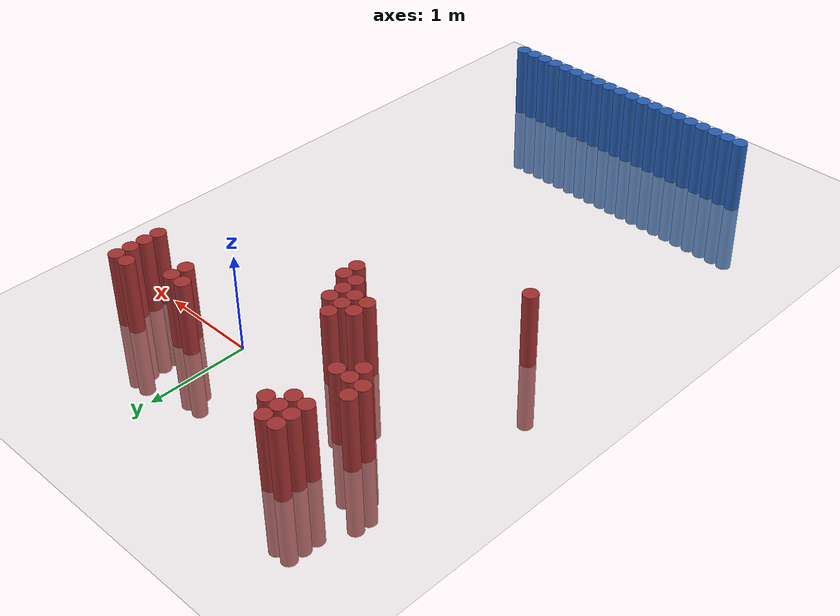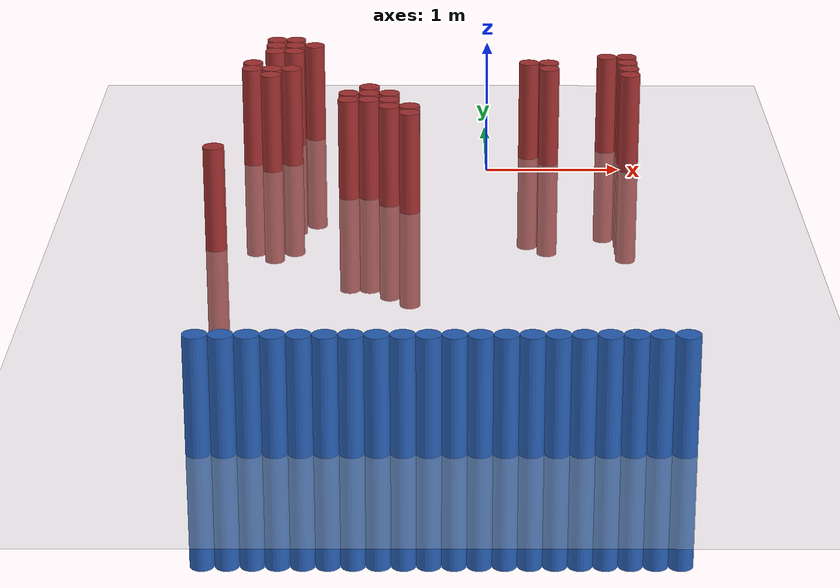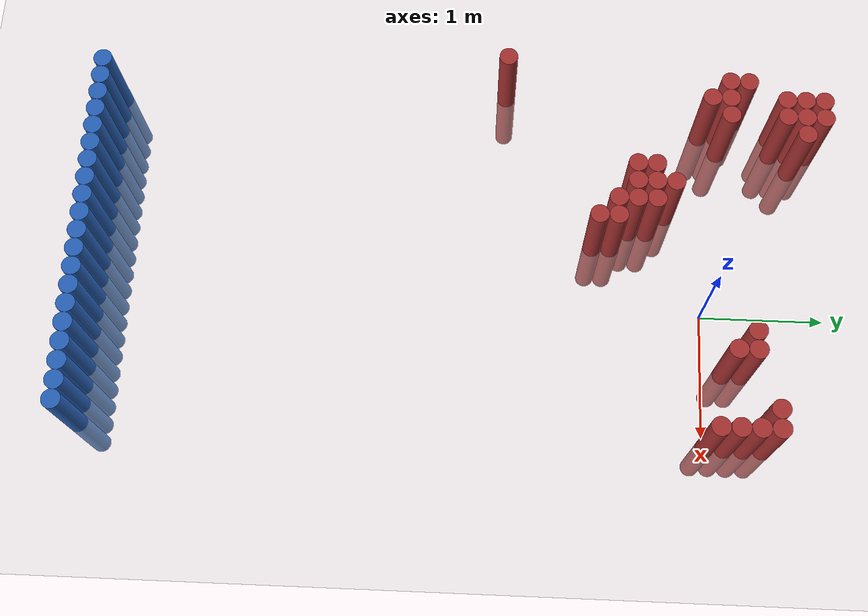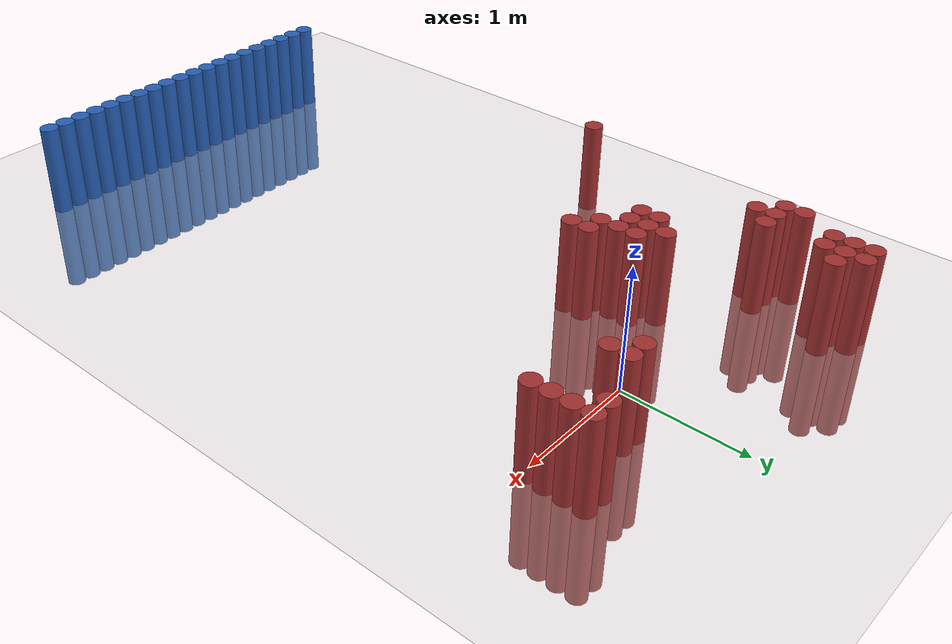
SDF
<sdf version="1.6">
 <world name="default">
  <model name="ground_plane">
   <static>1</static>
   <link name="link">
    <collision name="collision">
     <geometry><plane><normal>0 0 1</normal><size>100 100</size></plane></geometry>
     <surface><friction><ode><mu>100</mu><mu2>50</mu2></ode></friction></surface>
    </collision>
    <visual name="visual">
     <cast_shadows>0</cast_shadows>
     <geometry><plane><normal>0 0 1</normal><size>100 100</size></plane></geometry>
     <material>
      <script><uri>file://media/materials/scripts/gazebo.material</uri><name>Gazebo/Grey</name></script>
     </material>
    </visual>
   </link>
  </model>
  <model name="unit_cylinder_19">
   <static>1</static>
   <pose>1.075000 -4.925000 0.000000 0.000000 0.000000 0.000000</pose>
   <link name="link">
    <inertial>
     <mass>1</mass>
     <inertia><ixx>0.145833</ixx><ixy>0</ixy><ixz>0</ixz><iyy>0.145833</iyy><iyz>0</iyz><izz>0.125</izz></inertia>
    </inertial>
    <collision name="collision">
     <geometry><cylinder><radius>0.075000</radius><length>1.5</length></cylinder></geometry>
    </collision>
    <visual name="visual">
     <geometry><cylinder><radius>0.075000</radius><length>1.5</length></cylinder></geometry>
     <material>
      <ambient>0.152000 0.379000 0.720000 1</ambient>
      <diffuse>0.152000 0.379000 0.720000 1</diffuse>
     </material>
     <material>
      <script><name>Gazebo/Grey</name><uri>file://media/materials/scripts/gazebo.material</uri></script>
     </material>
    </visual>
   </link>
  </model>
  <model name="unit_cylinder_20">
   <static>1</static>
   <pose>0.925000 -4.925000 0.000000 0.000000 0.000000 0.000000</pose>
   <link name="link">
    <inertial>
     <mass>1</mass>
     <inertia><ixx>0.145833</ixx><ixy>0</ixy><ixz>0</ixz><iyy>0.145833</iyy><iyz>0</iyz><izz>0.125</izz></inertia>
    </inertial>
    <collision name="collision">
     <geometry><cylinder><radius>0.075000</radius><length>1.5</length></cylinder></geometry>
    </collision>
    <visual name="visual">
     <geometry><cylinder><radius>0.075000</radius><length>1.5</length></cylinder></geometry>
     <material>
      <ambient>0.152000 0.379000 0.720000 1</ambient>
      <diffuse>0.152000 0.379000 0.720000 1</diffuse>
     </material>
     <material>
      <script><name>Gazebo/Grey</name><uri>file://media/materials/scripts/gazebo.material</uri></script>
     </material>
    </visual>
   </link>
  </model>
  <model name="unit_cylinder_21">
   <static>1</static>
   <pose>0.775000 -4.925000 0.000000 0.000000 0.000000 0.000000</pose>
   <link name="link">
    <inertial>
     <mass>1</mass>
     <inertia><ixx>0.145833</ixx><ixy>0</ixy><ixz>0</ixz><iyy>0.145833</iyy><iyz>0</iyz><izz>0.125</izz></inertia>
    </inertial>
    <collision name="collision">
     <geometry><cylinder><radius>0.075000</radius><length>1.5</length></cylinder></geometry>
    </collision>
    <visual name="visual">
     <geometry><cylinder><radius>0.075000</radius><length>1.5</length></cylinder></geometry>
     <material>
      <ambient>0.152000 0.379000 0.720000 1</ambient>
      <diffuse>0.152000 0.379000 0.720000 1</diffuse>
     </material>
     <material>
      <script><name>Gazebo/Grey</name><uri>file://media/materials/scripts/gazebo.material</uri></script>
     </material>
    </visual>
   </link>
  </model>
  <model name="unit_cylinder_22">
   <static>1</static>
   <pose>0.625000 -4.925000 0.000000 0.000000 0.000000 0.000000</pose>
   <link name="link">
    <inertial>
     <mass>1</mass>
     <inertia><ixx>0.145833</ixx><ixy>0</ixy><ixz>0</ixz><iyy>0.145833</iyy><iyz>0</iyz><izz>0.125</izz></inertia>
    </inertial>
    <collision name="collision">
     <geometry><cylinder><radius>0.075000</radius><length>1.5</length></cylinder></geometry>
    </collision>
    <visual name="visual">
     <geometry><cylinder><radius>0.075000</radius><length>1.5</length></cylinder></geometry>
     <material>
      <ambient>0.152000 0.379000 0.720000 1</ambient>
      <diffuse>0.152000 0.379000 0.720000 1</diffuse>
     </material>
     <material>
      <script><name>Gazebo/Grey</name><uri>file://media/materials/scripts/gazebo.material</uri></script>
     </material>
    </visual>
   </link>
  </model>
  <model name="unit_cylinder_23">
   <static>1</static>
   <pose>0.475000 -4.925000 0.000000 0.000000 0.000000 0.000000</pose>
   <link name="link">
    <inertial>
     <mass>1</mass>
     <inertia><ixx>0.145833</ixx><ixy>0</ixy><ixz>0</ixz><iyy>0.145833</iyy><iyz>0</iyz><izz>0.125</izz></inertia>
    </inertial>
    <collision name="collision">
     <geometry><cylinder><radius>0.075000</radius><length>1.5</length></cylinder></geometry>
    </collision>
    <visual name="visual">
     <geometry><cylinder><radius>0.075000</radius><length>1.5</length></cylinder></geometry>
     <material>
      <ambient>0.152000 0.379000 0.720000 1</ambient>
      <diffuse>0.152000 0.379000 0.720000 1</diffuse>
     </material>
     <material>
      <script><name>Gazebo/Grey</name><uri>file://media/materials/scripts/gazebo.material</uri></script>
     </material>
    </visual>
   </link>
  </model>
  <model name="unit_cylinder_24">
   <static>1</static>
   <pose>0.325000 -4.925000 0.000000 0.000000 0.000000 0.000000</pose>
   <link name="link">
    <inertial>
     <mass>1</mass>
     <inertia><ixx>0.145833</ixx><ixy>0</ixy><ixz>0</ixz><iyy>0.145833</iyy><iyz>0</iyz><izz>0.125</izz></inertia>
    </inertial>
    <collision name="collision">
     <geometry><cylinder><radius>0.075000</radius><length>1.5</length></cylinder></geometry>
    </collision>
    <visual name="visual">
     <geometry><cylinder><radius>0.075000</radius><length>1.5</length></cylinder></geometry>
     <material>
      <ambient>0.152000 0.379000 0.720000 1</ambient>
      <diffuse>0.152000 0.379000 0.720000 1</diffuse>
     </material>
     <material>
      <script><name>Gazebo/Grey</name><uri>file://media/materials/scripts/gazebo.material</uri></script>
     </material>
    </visual>
   </link>
  </model>
  <model name="unit_cylinder_25">
   <static>1</static>
   <pose>0.175000 -4.925000 0.000000 0.000000 0.000000 0.000000</pose>
   <link name="link">
    <inertial>
     <mass>1</mass>
     <inertia><ixx>0.145833</ixx><ixy>0</ixy><ixz>0</ixz><iyy>0.145833</iyy><iyz>0</iyz><izz>0.125</izz></inertia>
    </inertial>
    <collision name="collision">
     <geometry><cylinder><radius>0.075000</radius><length>1.5</length></cylinder></geometry>
    </collision>
    <visual name="visual">
     <geometry><cylinder><radius>0.075000</radius><length>1.5</length></cylinder></geometry>
     <material>
      <ambient>0.152000 0.379000 0.720000 1</ambient>
      <diffuse>0.152000 0.379000 0.720000 1</diffuse>
     </material>
     <material>
      <script><name>Gazebo/Grey</name><uri>file://media/materials/scripts/gazebo.material</uri></script>
     </material>
    </visual>
   </link>
  </model>
  <model name="unit_cylinder_26">
   <static>1</static>
   <pose>0.025000 -4.925000 0.000000 0.000000 0.000000 0.000000</pose>
   <link name="link">
    <inertial>
     <mass>1</mass>
     <inertia><ixx>0.145833</ixx><ixy>0</ixy><ixz>0</ixz><iyy>0.145833</iyy><iyz>0</iyz><izz>0.125</izz></inertia>
    </inertial>
    <collision name="collision">
     <geometry><cylinder><radius>0.075000</radius><length>1.5</length></cylinder></geometry>
    </collision>
    <visual name="visual">
     <geometry><cylinder><radius>0.075000</radius><length>1.5</length></cylinder></geometry>
     <material>
      <ambient>0.152000 0.379000 0.720000 1</ambient>
      <diffuse>0.152000 0.379000 0.720000 1</diffuse>
     </material>
     <material>
      <script><name>Gazebo/Grey</name><uri>file://media/materials/scripts/gazebo.material</uri></script>
     </material>
    </visual>
   </link>
  </model>
  <model name="unit_cylinder_27">
   <static>1</static>
   <pose>-0.125000 -4.925000 0.000000 0.000000 0.000000 0.000000</pose>
   <link name="link">
    <inertial>
     <mass>1</mass>
     <inertia><ixx>0.145833</ixx><ixy>0</ixy><ixz>0</ixz><iyy>0.145833</iyy><iyz>0</iyz><izz>0.125</izz></inertia>
    </inertial>
    <collision name="collision">
     <geometry><cylinder><radius>0.075000</radius><length>1.5</length></cylinder></geometry>
    </collision>
    <visual name="visual">
     <geometry><cylinder><radius>0.075000</radius><length>1.5</length></cylinder></geometry>
     <material>
      <ambient>0.152000 0.379000 0.720000 1</ambient>
      <diffuse>0.152000 0.379000 0.720000 1</diffuse>
     </material>
     <material>
      <script><name>Gazebo/Grey</name><uri>file://media/materials/scripts/gazebo.material</uri></script>
     </material>
    </visual>
   </link>
  </model>
  <model name="unit_cylinder_28">
   <static>1</static>
   <pose>-0.275000 -4.925000 0.000000 0.000000 0.000000 0.000000</pose>
   <link name="link">
    <inertial>
     <mass>1</mass>
     <inertia><ixx>0.145833</ixx><ixy>0</ixy><ixz>0</ixz><iyy>0.145833</iyy><iyz>0</iyz><izz>0.125</izz></inertia>
    </inertial>
    <collision name="collision">
     <geometry><cylinder><radius>0.075000</radius><length>1.5</length></cylinder></geometry>
    </collision>
    <visual name="visual">
     <geometry><cylinder><radius>0.075000</radius><length>1.5</length></cylinder></geometry>
     <material>
      <ambient>0.152000 0.379000 0.720000 1</ambient>
      <diffuse>0.152000 0.379000 0.720000 1</diffuse>
     </material>
     <material>
      <script><name>Gazebo/Grey</name><uri>file://media/materials/scripts/gazebo.material</uri></script>
     </material>
    </visual>
   </link>
  </model>
  <model name="unit_cylinder_29">
   <static>1</static>
   <pose>-0.425000 -4.925000 0.000000 0.000000 0.000000 0.000000</pose>
   <link name="link">
    <inertial>
     <mass>1</mass>
     <inertia><ixx>0.145833</ixx><ixy>0</ixy><ixz>0</ixz><iyy>0.145833</iyy><iyz>0</iyz><izz>0.125</izz></inertia>
    </inertial>
    <collision name="collision">
     <geometry><cylinder><radius>0.075000</radius><length>1.5</length></cylinder></geometry>
    </collision>
    <visual name="visual">
     <geometry><cylinder><radius>0.075000</radius><length>1.5</length></cylinder></geometry>
     <material>
      <ambient>0.152000 0.379000 0.720000 1</ambient>
      <diffuse>0.152000 0.379000 0.720000 1</diffuse>
     </material>
     <material>
      <script><name>Gazebo/Grey</name><uri>file://media/materials/scripts/gazebo.material</uri></script>
     </material>
    </visual>
   </link>
  </model>
  <model name="unit_cylinder_30">
   <static>1</static>
   <pose>-0.575000 -4.925000 0.000000 0.000000 0.000000 0.000000</pose>
   <link name="link">
    <inertial>
     <mass>1</mass>
     <inertia><ixx>0.145833</ixx><ixy>0</ixy><ixz>0</ixz><iyy>0.145833</iyy><iyz>0</iyz><izz>0.125</izz></inertia>
    </inertial>
    <collision name="collision">
     <geometry><cylinder><radius>0.075000</radius><length>1.5</length></cylinder></geometry>
    </collision>
    <visual name="visual">
     <geometry><cylinder><radius>0.075000</radius><length>1.5</length></cylinder></geometry>
     <material>
      <ambient>0.152000 0.379000 0.720000 1</ambient>
      <diffuse>0.152000 0.379000 0.720000 1</diffuse>
     </material>
     <material>
      <script><name>Gazebo/Grey</name><uri>file://media/materials/scripts/gazebo.material</uri></script>
     </material>
    </visual>
   </link>
  </model>
  <model name="unit_cylinder_31">
   <static>1</static>
   <pose>-0.725000 -4.925000 0.000000 0.000000 0.000000 0.000000</pose>
   <link name="link">
    <inertial>
     <mass>1</mass>
     <inertia><ixx>0.145833</ixx><ixy>0</ixy><ixz>0</ixz><iyy>0.145833</iyy><iyz>0</iyz><izz>0.125</izz></inertia>
    </inertial>
    <collision name="collision">
     <geometry><cylinder><radius>0.075000</radius><length>1.5</length></cylinder></geometry>
    </collision>
    <visual name="visual">
     <geometry><cylinder><radius>0.075000</radius><length>1.5</length></cylinder></geometry>
     <material>
      <ambient>0.152000 0.379000 0.720000 1</ambient>
      <diffuse>0.152000 0.379000 0.720000 1</diffuse>
     </material>
     <material>
      <script><name>Gazebo/Grey</name><uri>file://media/materials/scripts/gazebo.material</uri></script>
     </material>
    </visual>
   </link>
  </model>
  <model name="unit_cylinder_32">
   <static>1</static>
   <pose>-0.875000 -4.925000 0.000000 0.000000 0.000000 0.000000</pose>
   <link name="link">
    <inertial>
     <mass>1</mass>
     <inertia><ixx>0.145833</ixx><ixy>0</ixy><ixz>0</ixz><iyy>0.145833</iyy><iyz>0</iyz><izz>0.125</izz></inertia>
    </inertial>
    <collision name="collision">
     <geometry><cylinder><radius>0.075000</radius><length>1.5</length></cylinder></geometry>
    </collision>
    <visual name="visual">
     <geometry><cylinder><radius>0.075000</radius><length>1.5</length></cylinder></geometry>
     <material>
      <ambient>0.152000 0.379000 0.720000 1</ambient>
      <diffuse>0.152000 0.379000 0.720000 1</diffuse>
     </material>
     <material>
      <script><name>Gazebo/Grey</name><uri>file://media/materials/scripts/gazebo.material</uri></script>
     </material>
    </visual>
   </link>
  </model>
  <model name="unit_cylinder_33">
   <static>1</static>
   <pose>-1.025000 -4.925000 0.000000 0.000000 0.000000 0.000000</pose>
   <link name="link">
    <inertial>
     <mass>1</mass>
     <inertia><ixx>0.145833</ixx><ixy>0</ixy><ixz>0</ixz><iyy>0.145833</iyy><iyz>0</iyz><izz>0.125</izz></inertia>
    </inertial>
    <collision name="collision">
     <geometry><cylinder><radius>0.075000</radius><length>1.5</length></cylinder></geometry>
    </collision>
    <visual name="visual">
     <geometry><cylinder><radius>0.075000</radius><length>1.5</length></cylinder></geometry>
     <material>
      <ambient>0.152000 0.379000 0.720000 1</ambient>
      <diffuse>0.152000 0.379000 0.720000 1</diffuse>
     </material>
     <material>
      <script><name>Gazebo/Grey</name><uri>file://media/materials/scripts/gazebo.material</uri></script>
     </material>
    </visual>
   </link>
  </model>
  <model name="unit_cylinder_34">
   <static>1</static>
   <pose>-1.175000 -4.925000 0.000000 0.000000 0.000000 0.000000</pose>
   <link name="link">
    <inertial>
     <mass>1</mass>
     <inertia><ixx>0.145833</ixx><ixy>0</ixy><ixz>0</ixz><iyy>0.145833</iyy><iyz>0</iyz><izz>0.125</izz></inertia>
    </inertial>
    <collision name="collision">
     <geometry><cylinder><radius>0.075000</radius><length>1.5</length></cylinder></geometry>
    </collision>
    <visual name="visual">
     <geometry><cylinder><radius>0.075000</radius><length>1.5</length></cylinder></geometry>
     <material>
      <ambient>0.152000 0.379000 0.720000 1</ambient>
      <diffuse>0.152000 0.379000 0.720000 1</diffuse>
     </material>
     <material>
      <script><name>Gazebo/Grey</name><uri>file://media/materials/scripts/gazebo.material</uri></script>
     </material>
    </visual>
   </link>
  </model>
  <model name="unit_cylinder_35">
   <static>1</static>
   <pose>-1.325000 -4.925000 0.000000 0.000000 0.000000 0.000000</pose>
   <link name="link">
    <inertial>
     <mass>1</mass>
     <inertia><ixx>0.145833</ixx><ixy>0</ixy><ixz>0</ixz><iyy>0.145833</iyy><iyz>0</iyz><izz>0.125</izz></inertia>
    </inertial>
    <collision name="collision">
     <geometry><cylinder><radius>0.075000</radius><length>1.5</length></cylinder></geometry>
    </collision>
    <visual name="visual">
     <geometry><cylinder><radius>0.075000</radius><length>1.5</length></cylinder></geometry>
     <material>
      <ambient>0.152000 0.379000 0.720000 1</ambient>
      <diffuse>0.152000 0.379000 0.720000 1</diffuse>
     </material>
     <material>
      <script><name>Gazebo/Grey</name><uri>file://media/materials/scripts/gazebo.material</uri></script>
     </material>
    </visual>
   </link>
  </model>
  <model name="unit_cylinder_36">
   <static>1</static>
   <pose>-1.475000 -4.925000 0.000000 0.000000 0.000000 0.000000</pose>
   <link name="link">
    <inertial>
     <mass>1</mass>
     <inertia><ixx>0.145833</ixx><ixy>0</ixy><ixz>0</ixz><iyy>0.145833</iyy><iyz>0</iyz><izz>0.125</izz></inertia>
    </inertial>
    <collision name="collision">
     <geometry><cylinder><radius>0.075000</radius><length>1.5</length></cylinder></geometry>
    </collision>
    <visual name="visual">
     <geometry><cylinder><radius>0.075000</radius><length>1.5</length></cylinder></geometry>
     <material>
      <ambient>0.152000 0.379000 0.720000 1</ambient>
      <diffuse>0.152000 0.379000 0.720000 1</diffuse>
     </material>
     <material>
      <script><name>Gazebo/Grey</name><uri>file://media/materials/scripts/gazebo.material</uri></script>
     </material>
    </visual>
   </link>
  </model>
  <model name="unit_cylinder_37">
   <static>1</static>
   <pose>-1.625000 -4.925000 0.000000 0.000000 0.000000 0.000000</pose>
   <link name="link">
    <inertial>
     <mass>1</mass>
     <inertia><ixx>0.145833</ixx><ixy>0</ixy><ixz>0</ixz><iyy>0.145833</iyy><iyz>0</iyz><izz>0.125</izz></inertia>
    </inertial>
    <collision name="collision">
     <geometry><cylinder><radius>0.075000</radius><length>1.5</length></cylinder></geometry>
    </collision>
    <visual name="visual">
     <geometry><cylinder><radius>0.075000</radius><length>1.5</length></cylinder></geometry>
     <material>
      <ambient>0.152000 0.379000 0.720000 1</ambient>
      <diffuse>0.152000 0.379000 0.720000 1</diffuse>
     </material>
     <material>
      <script><name>Gazebo/Grey</name><uri>file://media/materials/scripts/gazebo.material</uri></script>
     </material>
    </visual>
   </link>
  </model>
  <model name="unit_cylinder_38">
   <static>1</static>
   <pose>-1.775000 -4.925000 0.000000 0.000000 0.000000 0.000000</pose>
   <link name="link">
    <inertial>
     <mass>1</mass>
     <inertia><ixx>0.145833</ixx><ixy>0</ixy><ixz>0</ixz><iyy>0.145833</iyy><iyz>0</iyz><izz>0.125</izz></inertia>
    </inertial>
    <collision name="collision">
     <geometry><cylinder><radius>0.075000</radius><length>1.5</length></cylinder></geometry>
    </collision>
    <visual name="visual">
     <geometry><cylinder><radius>0.075000</radius><length>1.5</length></cylinder></geometry>
     <material>
      <ambient>0.152000 0.379000 0.720000 1</ambient>
      <diffuse>0.152000 0.379000 0.720000 1</diffuse>
     </material>
     <material>
      <script><name>Gazebo/Grey</name><uri>file://media/materials/scripts/gazebo.material</uri></script>
     </material>
    </visual>
   </link>
  </model>
  <model name="unit_cylinder_306">
   <static>1</static>
   <pose>-1.925000 -1.625000 0.000000 0.000000 0.000000 0.000000</pose>
   <link name="link">
    <inertial>
     <mass>1</mass>
     <inertia><ixx>0.145833</ixx><ixy>0</ixy><ixz>0</ixz><iyy>0.145833</iyy><iyz>0</iyz><izz>0.125</izz></inertia>
    </inertial>
    <collision name="collision">
     <geometry><cylinder><radius>0.075000</radius><length>1.5</length></cylinder></geometry>
    </collision>
    <visual name="visual">
     <geometry><cylinder><radius>0.075000</radius><length>1.5</length></cylinder></geometry>
     <material>
      <ambient>0.648000 0.192000 0.192000 1</ambient>
      <diffuse>0.648000 0.192000 0.192000 1</diffuse>
     </material>
     <material>
      <script><name>Gazebo/Grey</name><uri>file://media/materials/scripts/gazebo.material</uri></script>
     </material>
    </visual>
   </link>
  </model>
  <model name="unit_cylinder_311">
   <static>1</static>
   <pose>-1.775000 0.175000 0.000000 0.000000 0.000000 0.000000</pose>
   <link name="link">
    <inertial>
     <mass>1</mass>
     <inertia><ixx>0.145833</ixx><ixy>0</ixy><ixz>0</ixz><iyy>0.145833</iyy><iyz>0</iyz><izz>0.125</izz></inertia>
    </inertial>
    <collision name="collision">
     <geometry><cylinder><radius>0.075000</radius><length>1.5</length></cylinder></geometry>
    </collision>
    <visual name="visual">
     <geometry><cylinder><radius>0.075000</radius><length>1.5</length></cylinder></geometry>
     <material>
      <ambient>0.648000 0.192000 0.192000 1</ambient>
      <diffuse>0.648000 0.192000 0.192000 1</diffuse>
     </material>
     <material>
      <script><name>Gazebo/Grey</name><uri>file://media/materials/scripts/gazebo.material</uri></script>
     </material>
    </visual>
   </link>
  </model>
  <model name="unit_cylinder_312">
   <static>1</static>
   <pose>-1.775000 0.325000 0.000000 0.000000 0.000000 0.000000</pose>
   <link name="link">
    <inertial>
     <mass>1</mass>
     <inertia><ixx>0.145833</ixx><ixy>0</ixy><ixz>0</ixz><iyy>0.145833</iyy><iyz>0</iyz><izz>0.125</izz></inertia>
    </inertial>
    <collision name="collision">
     <geometry><cylinder><radius>0.075000</radius><length>1.5</length></cylinder></geometry>
    </collision>
    <visual name="visual">
     <geometry><cylinder><radius>0.075000</radius><length>1.5</length></cylinder></geometry>
     <material>
      <ambient>0.648000 0.192000 0.192000 1</ambient>
      <diffuse>0.648000 0.192000 0.192000 1</diffuse>
     </material>
     <material>
      <script><name>Gazebo/Grey</name><uri>file://media/materials/scripts/gazebo.material</uri></script>
     </material>
    </visual>
   </link>
  </model>
  <model name="unit_cylinder_320">
   <static>1</static>
   <pose>-1.625000 0.025000 0.000000 0.000000 0.000000 0.000000</pose>
   <link name="link">
    <inertial>
     <mass>1</mass>
     <inertia><ixx>0.145833</ixx><ixy>0</ixy><ixz>0</ixz><iyy>0.145833</iyy><iyz>0</iyz><izz>0.125</izz></inertia>
    </inertial>
    <collision name="collision">
     <geometry><cylinder><radius>0.075000</radius><length>1.5</length></cylinder></geometry>
    </collision>
    <visual name="visual">
     <geometry><cylinder><radius>0.075000</radius><length>1.5</length></cylinder></geometry>
     <material>
      <ambient>0.648000 0.192000 0.192000 1</ambient>
      <diffuse>0.648000 0.192000 0.192000 1</diffuse>
     </material>
     <material>
      <script><name>Gazebo/Grey</name><uri>file://media/materials/scripts/gazebo.material</uri></script>
     </material>
    </visual>
   </link>
  </model>
  <model name="unit_cylinder_321">
   <static>1</static>
   <pose>-1.625000 0.175000 0.000000 0.000000 0.000000 0.000000</pose>
   <link name="link">
    <inertial>
     <mass>1</mass>
     <inertia><ixx>0.145833</ixx><ixy>0</ixy><ixz>0</ixz><iyy>0.145833</iyy><iyz>0</iyz><izz>0.125</izz></inertia>
    </inertial>
    <collision name="collision">
     <geometry><cylinder><radius>0.075000</radius><length>1.5</length></cylinder></geometry>
    </collision>
    <visual name="visual">
     <geometry><cylinder><radius>0.075000</radius><length>1.5</length></cylinder></geometry>
     <material>
      <ambient>0.648000 0.192000 0.192000 1</ambient>
      <diffuse>0.648000 0.192000 0.192000 1</diffuse>
     </material>
     <material>
      <script><name>Gazebo/Grey</name><uri>file://media/materials/scripts/gazebo.material</uri></script>
     </material>
    </visual>
   </link>
  </model>
  <model name="unit_cylinder_322">
   <static>1</static>
   <pose>-1.625000 0.625000 0.000000 0.000000 0.000000 0.000000</pose>
   <link name="link">
    <inertial>
     <mass>1</mass>
     <inertia><ixx>0.145833</ixx><ixy>0</ixy><ixz>0</ixz><iyy>0.145833</iyy><iyz>0</iyz><izz>0.125</izz></inertia>
    </inertial>
    <collision name="collision">
     <geometry><cylinder><radius>0.075000</radius><length>1.5</length></cylinder></geometry>
    </collision>
    <visual name="visual">
     <geometry><cylinder><radius>0.075000</radius><length>1.5</length></cylinder></geometry>
     <material>
      <ambient>0.648000 0.192000 0.192000 1</ambient>
      <diffuse>0.648000 0.192000 0.192000 1</diffuse>
     </material>
     <material>
      <script><name>Gazebo/Grey</name><uri>file://media/materials/scripts/gazebo.material</uri></script>
     </material>
    </visual>
   </link>
  </model>
  <model name="unit_cylinder_323">
   <static>1</static>
   <pose>-1.625000 0.775000 0.000000 0.000000 0.000000 0.000000</pose>
   <link name="link">
    <inertial>
     <mass>1</mass>
     <inertia><ixx>0.145833</ixx><ixy>0</ixy><ixz>0</ixz><iyy>0.145833</iyy><iyz>0</iyz><izz>0.125</izz></inertia>
    </inertial>
    <collision name="collision">
     <geometry><cylinder><radius>0.075000</radius><length>1.5</length></cylinder></geometry>
    </collision>
    <visual name="visual">
     <geometry><cylinder><radius>0.075000</radius><length>1.5</length></cylinder></geometry>
     <material>
      <ambient>0.648000 0.192000 0.192000 1</ambient>
      <diffuse>0.648000 0.192000 0.192000 1</diffuse>
     </material>
     <material>
      <script><name>Gazebo/Grey</name><uri>file://media/materials/scripts/gazebo.material</uri></script>
     </material>
    </visual>
   </link>
  </model>
  <model name="unit_cylinder_324">
   <static>1</static>
   <pose>-1.625000 0.925000 0.000000 0.000000 0.000000 0.000000</pose>
   <link name="link">
    <inertial>
     <mass>1</mass>
     <inertia><ixx>0.145833</ixx><ixy>0</ixy><ixz>0</ixz><iyy>0.145833</iyy><iyz>0</iyz><izz>0.125</izz></inertia>
    </inertial>
    <collision name="collision">
     <geometry><cylinder><radius>0.075000</radius><length>1.5</length></cylinder></geometry>
    </collision>
    <visual name="visual">
     <geometry><cylinder><radius>0.075000</radius><length>1.5</length></cylinder></geometry>
     <material>
      <ambient>0.648000 0.192000 0.192000 1</ambient>
      <diffuse>0.648000 0.192000 0.192000 1</diffuse>
     </material>
     <material>
      <script><name>Gazebo/Grey</name><uri>file://media/materials/scripts/gazebo.material</uri></script>
     </material>
    </visual>
   </link>
  </model>
  <model name="unit_cylinder_337">
   <static>1</static>
   <pose>-1.475000 0.175000 0.000000 0.000000 0.000000 0.000000</pose>
   <link name="link">
    <inertial>
     <mass>1</mass>
     <inertia><ixx>0.145833</ixx><ixy>0</ixy><ixz>0</ixz><iyy>0.145833</iyy><iyz>0</iyz><izz>0.125</izz></inertia>
    </inertial>
    <collision name="collision">
     <geometry><cylinder><radius>0.075000</radius><length>1.5</length></cylinder></geometry>
    </collision>
    <visual name="visual">
     <geometry><cylinder><radius>0.075000</radius><length>1.5</length></cylinder></geometry>
     <material>
      <ambient>0.648000 0.192000 0.192000 1</ambient>
      <diffuse>0.648000 0.192000 0.192000 1</diffuse>
     </material>
     <material>
      <script><name>Gazebo/Grey</name><uri>file://media/materials/scripts/gazebo.material</uri></script>
     </material>
    </visual>
   </link>
  </model>
  <model name="unit_cylinder_338">
   <static>1</static>
   <pose>-1.475000 0.625000 0.000000 0.000000 0.000000 0.000000</pose>
   <link name="link">
    <inertial>
     <mass>1</mass>
     <inertia><ixx>0.145833</ixx><ixy>0</ixy><ixz>0</ixz><iyy>0.145833</iyy><iyz>0</iyz><izz>0.125</izz></inertia>
    </inertial>
    <collision name="collision">
     <geometry><cylinder><radius>0.075000</radius><length>1.5</length></cylinder></geometry>
    </collision>
    <visual name="visual">
     <geometry><cylinder><radius>0.075000</radius><length>1.5</length></cylinder></geometry>
     <material>
      <ambient>0.648000 0.192000 0.192000 1</ambient>
      <diffuse>0.648000 0.192000 0.192000 1</diffuse>
     </material>
     <material>
      <script><name>Gazebo/Grey</name><uri>file://media/materials/scripts/gazebo.material</uri></script>
     </material>
    </visual>
   </link>
  </model>
  <model name="unit_cylinder_339">
   <static>1</static>
   <pose>-1.475000 0.775000 0.000000 0.000000 0.000000 0.000000</pose>
   <link name="link">
    <inertial>
     <mass>1</mass>
     <inertia><ixx>0.145833</ixx><ixy>0</ixy><ixz>0</ixz><iyy>0.145833</iyy><iyz>0</iyz><izz>0.125</izz></inertia>
    </inertial>
    <collision name="collision">
     <geometry><cylinder><radius>0.075000</radius><length>1.5</length></cylinder></geometry>
    </collision>
    <visual name="visual">
     <geometry><cylinder><radius>0.075000</radius><length>1.5</length></cylinder></geometry>
     <material>
      <ambient>0.648000 0.192000 0.192000 1</ambient>
      <diffuse>0.648000 0.192000 0.192000 1</diffuse>
     </material>
     <material>
      <script><name>Gazebo/Grey</name><uri>file://media/materials/scripts/gazebo.material</uri></script>
     </material>
    </visual>
   </link>
  </model>
  <model name="unit_cylinder_340">
   <static>1</static>
   <pose>-1.475000 0.925000 0.000000 0.000000 0.000000 0.000000</pose>
   <link name="link">
    <inertial>
     <mass>1</mass>
     <inertia><ixx>0.145833</ixx><ixy>0</ixy><ixz>0</ixz><iyy>0.145833</iyy><iyz>0</iyz><izz>0.125</izz></inertia>
    </inertial>
    <collision name="collision">
     <geometry><cylinder><radius>0.075000</radius><length>1.5</length></cylinder></geometry>
    </collision>
    <visual name="visual">
     <geometry><cylinder><radius>0.075000</radius><length>1.5</length></cylinder></geometry>
     <material>
      <ambient>0.648000 0.192000 0.192000 1</ambient>
      <diffuse>0.648000 0.192000 0.192000 1</diffuse>
     </material>
     <material>
      <script><name>Gazebo/Grey</name><uri>file://media/materials/scripts/gazebo.material</uri></script>
     </material>
    </visual>
   </link>
  </model>
  <model name="unit_cylinder_348">
   <static>1</static>
   <pose>-1.325000 0.775000 0.000000 0.000000 0.000000 0.000000</pose>
   <link name="link">
    <inertial>
     <mass>1</mass>
     <inertia><ixx>0.145833</ixx><ixy>0</ixy><ixz>0</ixz><iyy>0.145833</iyy><iyz>0</iyz><izz>0.125</izz></inertia>
    </inertial>
    <collision name="collision">
     <geometry><cylinder><radius>0.075000</radius><length>1.5</length></cylinder></geometry>
    </collision>
    <visual name="visual">
     <geometry><cylinder><radius>0.075000</radius><length>1.5</length></cylinder></geometry>
     <material>
      <ambient>0.648000 0.192000 0.192000 1</ambient>
      <diffuse>0.648000 0.192000 0.192000 1</diffuse>
     </material>
     <material>
      <script><name>Gazebo/Grey</name><uri>file://media/materials/scripts/gazebo.material</uri></script>
     </material>
    </visual>
   </link>
  </model>
  <model name="unit_cylinder_357">
   <static>1</static>
   <pose>-1.025000 -0.575000 0.000000 0.000000 0.000000 0.000000</pose>
   <link name="link">
    <inertial>
     <mass>1</mass>
     <inertia><ixx>0.145833</ixx><ixy>0</ixy><ixz>0</ixz><iyy>0.145833</iyy><iyz>0</iyz><izz>0.125</izz></inertia>
    </inertial>
    <collision name="collision">
     <geometry><cylinder><radius>0.075000</radius><length>1.5</length></cylinder></geometry>
    </collision>
    <visual name="visual">
     <geometry><cylinder><radius>0.075000</radius><length>1.5</length></cylinder></geometry>
     <material>
      <ambient>0.648000 0.192000 0.192000 1</ambient>
      <diffuse>0.648000 0.192000 0.192000 1</diffuse>
     </material>
     <material>
      <script><name>Gazebo/Grey</name><uri>file://media/materials/scripts/gazebo.material</uri></script>
     </material>
    </visual>
   </link>
  </model>
  <model name="unit_cylinder_358">
   <static>1</static>
   <pose>-1.025000 -0.425000 0.000000 0.000000 0.000000 0.000000</pose>
   <link name="link">
    <inertial>
     <mass>1</mass>
     <inertia><ixx>0.145833</ixx><ixy>0</ixy><ixz>0</ixz><iyy>0.145833</iyy><iyz>0</iyz><izz>0.125</izz></inertia>
    </inertial>
    <collision name="collision">
     <geometry><cylinder><radius>0.075000</radius><length>1.5</length></cylinder></geometry>
    </collision>
    <visual name="visual">
     <geometry><cylinder><radius>0.075000</radius><length>1.5</length></cylinder></geometry>
     <material>
      <ambient>0.648000 0.192000 0.192000 1</ambient>
      <diffuse>0.648000 0.192000 0.192000 1</diffuse>
     </material>
     <material>
      <script><name>Gazebo/Grey</name><uri>file://media/materials/scripts/gazebo.material</uri></script>
     </material>
    </visual>
   </link>
  </model>
  <model name="unit_cylinder_359">
   <static>1</static>
   <pose>-0.875000 -0.575000 0.000000 0.000000 0.000000 0.000000</pose>
   <link name="link">
    <inertial>
     <mass>1</mass>
     <inertia><ixx>0.145833</ixx><ixy>0</ixy><ixz>0</ixz><iyy>0.145833</iyy><iyz>0</iyz><izz>0.125</izz></inertia>
    </inertial>
    <collision name="collision">
     <geometry><cylinder><radius>0.075000</radius><length>1.5</length></cylinder></geometry>
    </collision>
    <visual name="visual">
     <geometry><cylinder><radius>0.075000</radius><length>1.5</length></cylinder></geometry>
     <material>
      <ambient>0.648000 0.192000 0.192000 1</ambient>
      <diffuse>0.648000 0.192000 0.192000 1</diffuse>
     </material>
     <material>
      <script><name>Gazebo/Grey</name><uri>file://media/materials/scripts/gazebo.material</uri></script>
     </material>
    </visual>
   </link>
  </model>
  <model name="unit_cylinder_360">
   <static>1</static>
   <pose>-0.875000 -0.425000 0.000000 0.000000 0.000000 0.000000</pose>
   <link name="link">
    <inertial>
     <mass>1</mass>
     <inertia><ixx>0.145833</ixx><ixy>0</ixy><ixz>0</ixz><iyy>0.145833</iyy><iyz>0</iyz><izz>0.125</izz></inertia>
    </inertial>
    <collision name="collision">
     <geometry><cylinder><radius>0.075000</radius><length>1.5</length></cylinder></geometry>
    </collision>
    <visual name="visual">
     <geometry><cylinder><radius>0.075000</radius><length>1.5</length></cylinder></geometry>
     <material>
      <ambient>0.648000 0.192000 0.192000 1</ambient>
      <diffuse>0.648000 0.192000 0.192000 1</diffuse>
     </material>
     <material>
      <script><name>Gazebo/Grey</name><uri>file://media/materials/scripts/gazebo.material</uri></script>
     </material>
    </visual>
   </link>
  </model>
  <model name="unit_cylinder_361">
   <static>1</static>
   <pose>-0.875000 -0.275000 0.000000 0.000000 0.000000 0.000000</pose>
   <link name="link">
    <inertial>
     <mass>1</mass>
     <inertia><ixx>0.145833</ixx><ixy>0</ixy><ixz>0</ixz><iyy>0.145833</iyy><iyz>0</iyz><izz>0.125</izz></inertia>
    </inertial>
    <collision name="collision">
     <geometry><cylinder><radius>0.075000</radius><length>1.5</length></cylinder></geometry>
    </collision>
    <visual name="visual">
     <geometry><cylinder><radius>0.075000</radius><length>1.5</length></cylinder></geometry>
     <material>
      <ambient>0.648000 0.192000 0.192000 1</ambient>
      <diffuse>0.648000 0.192000 0.192000 1</diffuse>
     </material>
     <material>
      <script><name>Gazebo/Grey</name><uri>file://media/materials/scripts/gazebo.material</uri></script>
     </material>
    </visual>
   </link>
  </model>
  <model name="unit_cylinder_363">
   <static>1</static>
   <pose>-0.725000 -0.725000 0.000000 0.000000 0.000000 0.000000</pose>
   <link name="link">
    <inertial>
     <mass>1</mass>
     <inertia><ixx>0.145833</ixx><ixy>0</ixy><ixz>0</ixz><iyy>0.145833</iyy><iyz>0</iyz><izz>0.125</izz></inertia>
    </inertial>
    <collision name="collision">
     <geometry><cylinder><radius>0.075000</radius><length>1.5</length></cylinder></geometry>
    </collision>
    <visual name="visual">
     <geometry><cylinder><radius>0.075000</radius><length>1.5</length></cylinder></geometry>
     <material>
      <ambient>0.648000 0.192000 0.192000 1</ambient>
      <diffuse>0.648000 0.192000 0.192000 1</diffuse>
     </material>
     <material>
      <script><name>Gazebo/Grey</name><uri>file://media/materials/scripts/gazebo.material</uri></script>
     </material>
    </visual>
   </link>
  </model>
  <model name="unit_cylinder_364">
   <static>1</static>
   <pose>-0.725000 -0.575000 0.000000 0.000000 0.000000 0.000000</pose>
   <link name="link">
    <inertial>
     <mass>1</mass>
     <inertia><ixx>0.145833</ixx><ixy>0</ixy><ixz>0</ixz><iyy>0.145833</iyy><iyz>0</iyz><izz>0.125</izz></inertia>
    </inertial>
    <collision name="collision">
     <geometry><cylinder><radius>0.075000</radius><length>1.5</length></cylinder></geometry>
    </collision>
    <visual name="visual">
     <geometry><cylinder><radius>0.075000</radius><length>1.5</length></cylinder></geometry>
     <material>
      <ambient>0.648000 0.192000 0.192000 1</ambient>
      <diffuse>0.648000 0.192000 0.192000 1</diffuse>
     </material>
     <material>
      <script><name>Gazebo/Grey</name><uri>file://media/materials/scripts/gazebo.material</uri></script>
     </material>
    </visual>
   </link>
  </model>
  <model name="unit_cylinder_365">
   <static>1</static>
   <pose>-0.725000 -0.425000 0.000000 0.000000 0.000000 0.000000</pose>
   <link name="link">
    <inertial>
     <mass>1</mass>
     <inertia><ixx>0.145833</ixx><ixy>0</ixy><ixz>0</ixz><iyy>0.145833</iyy><iyz>0</iyz><izz>0.125</izz></inertia>
    </inertial>
    <collision name="collision">
     <geometry><cylinder><radius>0.075000</radius><length>1.5</length></cylinder></geometry>
    </collision>
    <visual name="visual">
     <geometry><cylinder><radius>0.075000</radius><length>1.5</length></cylinder></geometry>
     <material>
      <ambient>0.648000 0.192000 0.192000 1</ambient>
      <diffuse>0.648000 0.192000 0.192000 1</diffuse>
     </material>
     <material>
      <script><name>Gazebo/Grey</name><uri>file://media/materials/scripts/gazebo.material</uri></script>
     </material>
    </visual>
   </link>
  </model>
  <model name="unit_cylinder_369">
   <static>1</static>
   <pose>-0.575000 -0.875000 0.000000 0.000000 0.000000 0.000000</pose>
   <link name="link">
    <inertial>
     <mass>1</mass>
     <inertia><ixx>0.145833</ixx><ixy>0</ixy><ixz>0</ixz><iyy>0.145833</iyy><iyz>0</iyz><izz>0.125</izz></inertia>
    </inertial>
    <collision name="collision">
     <geometry><cylinder><radius>0.075000</radius><length>1.5</length></cylinder></geometry>
    </collision>
    <visual name="visual">
     <geometry><cylinder><radius>0.075000</radius><length>1.5</length></cylinder></geometry>
     <material>
      <ambient>0.648000 0.192000 0.192000 1</ambient>
      <diffuse>0.648000 0.192000 0.192000 1</diffuse>
     </material>
     <material>
      <script><name>Gazebo/Grey</name><uri>file://media/materials/scripts/gazebo.material</uri></script>
     </material>
    </visual>
   </link>
  </model>
  <model name="unit_cylinder_370">
   <static>1</static>
   <pose>-0.575000 -0.725000 0.000000 0.000000 0.000000 0.000000</pose>
   <link name="link">
    <inertial>
     <mass>1</mass>
     <inertia><ixx>0.145833</ixx><ixy>0</ixy><ixz>0</ixz><iyy>0.145833</iyy><iyz>0</iyz><izz>0.125</izz></inertia>
    </inertial>
    <collision name="collision">
     <geometry><cylinder><radius>0.075000</radius><length>1.5</length></cylinder></geometry>
    </collision>
    <visual name="visual">
     <geometry><cylinder><radius>0.075000</radius><length>1.5</length></cylinder></geometry>
     <material>
      <ambient>0.648000 0.192000 0.192000 1</ambient>
      <diffuse>0.648000 0.192000 0.192000 1</diffuse>
     </material>
     <material>
      <script><name>Gazebo/Grey</name><uri>file://media/materials/scripts/gazebo.material</uri></script>
     </material>
    </visual>
   </link>
  </model>
  <model name="unit_cylinder_380">
   <static>1</static>
   <pose>0.325000 0.325000 0.000000 0.000000 0.000000 0.000000</pose>
   <link name="link">
    <inertial>
     <mass>1</mass>
     <inertia><ixx>0.145833</ixx><ixy>0</ixy><ixz>0</ixz><iyy>0.145833</iyy><iyz>0</iyz><izz>0.125</izz></inertia>
    </inertial>
    <collision name="collision">
     <geometry><cylinder><radius>0.075000</radius><length>1.5</length></cylinder></geometry>
    </collision>
    <visual name="visual">
     <geometry><cylinder><radius>0.075000</radius><length>1.5</length></cylinder></geometry>
     <material>
      <ambient>0.648000 0.192000 0.192000 1</ambient>
      <diffuse>0.648000 0.192000 0.192000 1</diffuse>
     </material>
     <material>
      <script><name>Gazebo/Grey</name><uri>file://media/materials/scripts/gazebo.material</uri></script>
     </material>
    </visual>
   </link>
  </model>
  <model name="unit_cylinder_381">
   <static>1</static>
   <pose>0.475000 0.175000 0.000000 0.000000 0.000000 0.000000</pose>
   <link name="link">
    <inertial>
     <mass>1</mass>
     <inertia><ixx>0.145833</ixx><ixy>0</ixy><ixz>0</ixz><iyy>0.145833</iyy><iyz>0</iyz><izz>0.125</izz></inertia>
    </inertial>
    <collision name="collision">
     <geometry><cylinder><radius>0.075000</radius><length>1.5</length></cylinder></geometry>
    </collision>
    <visual name="visual">
     <geometry><cylinder><radius>0.075000</radius><length>1.5</length></cylinder></geometry>
     <material>
      <ambient>0.648000 0.192000 0.192000 1</ambient>
      <diffuse>0.648000 0.192000 0.192000 1</diffuse>
     </material>
     <material>
      <script><name>Gazebo/Grey</name><uri>file://media/materials/scripts/gazebo.material</uri></script>
     </material>
    </visual>
   </link>
  </model>
  <model name="unit_cylinder_382">
   <static>1</static>
   <pose>0.475000 0.325000 0.000000 0.000000 0.000000 0.000000</pose>
   <link name="link">
    <inertial>
     <mass>1</mass>
     <inertia><ixx>0.145833</ixx><ixy>0</ixy><ixz>0</ixz><iyy>0.145833</iyy><iyz>0</iyz><izz>0.125</izz></inertia>
    </inertial>
    <collision name="collision">
     <geometry><cylinder><radius>0.075000</radius><length>1.5</length></cylinder></geometry>
    </collision>
    <visual name="visual">
     <geometry><cylinder><radius>0.075000</radius><length>1.5</length></cylinder></geometry>
     <material>
      <ambient>0.648000 0.192000 0.192000 1</ambient>
      <diffuse>0.648000 0.192000 0.192000 1</diffuse>
     </material>
     <material>
      <script><name>Gazebo/Grey</name><uri>file://media/materials/scripts/gazebo.material</uri></script>
     </material>
    </visual>
   </link>
  </model>
  <model name="unit_cylinder_387">
   <static>1</static>
   <pose>0.925000 0.475000 0.000000 0.000000 0.000000 0.000000</pose>
   <link name="link">
    <inertial>
     <mass>1</mass>
     <inertia><ixx>0.145833</ixx><ixy>0</ixy><ixz>0</ixz><iyy>0.145833</iyy><iyz>0</iyz><izz>0.125</izz></inertia>
    </inertial>
    <collision name="collision">
     <geometry><cylinder><radius>0.075000</radius><length>1.5</length></cylinder></geometry>
    </collision>
    <visual name="visual">
     <geometry><cylinder><radius>0.075000</radius><length>1.5</length></cylinder></geometry>
     <material>
      <ambient>0.648000 0.192000 0.192000 1</ambient>
      <diffuse>0.648000 0.192000 0.192000 1</diffuse>
     </material>
     <material>
      <script><name>Gazebo/Grey</name><uri>file://media/materials/scripts/gazebo.material</uri></script>
     </material>
    </visual>
   </link>
  </model>
  <model name="unit_cylinder_392">
   <static>1</static>
   <pose>1.075000 0.025000 0.000000 0.000000 0.000000 0.000000</pose>
   <link name="link">
    <inertial>
     <mass>1</mass>
     <inertia><ixx>0.145833</ixx><ixy>0</ixy><ixz>0</ixz><iyy>0.145833</iyy><iyz>0</iyz><izz>0.125</izz></inertia>
    </inertial>
    <collision name="collision">
     <geometry><cylinder><radius>0.075000</radius><length>1.5</length></cylinder></geometry>
    </collision>
    <visual name="visual">
     <geometry><cylinder><radius>0.075000</radius><length>1.5</length></cylinder></geometry>
     <material>
      <ambient>0.648000 0.192000 0.192000 1</ambient>
      <diffuse>0.648000 0.192000 0.192000 1</diffuse>
     </material>
     <material>
      <script><name>Gazebo/Grey</name><uri>file://media/materials/scripts/gazebo.material</uri></script>
     </material>
    </visual>
   </link>
  </model>
  <model name="unit_cylinder_393">
   <static>1</static>
   <pose>1.075000 0.175000 0.000000 0.000000 0.000000 0.000000</pose>
   <link name="link">
    <inertial>
     <mass>1</mass>
     <inertia><ixx>0.145833</ixx><ixy>0</ixy><ixz>0</ixz><iyy>0.145833</iyy><iyz>0</iyz><izz>0.125</izz></inertia>
    </inertial>
    <collision name="collision">
     <geometry><cylinder><radius>0.075000</radius><length>1.5</length></cylinder></geometry>
    </collision>
    <visual name="visual">
     <geometry><cylinder><radius>0.075000</radius><length>1.5</length></cylinder></geometry>
     <material>
      <ambient>0.648000 0.192000 0.192000 1</ambient>
      <diffuse>0.648000 0.192000 0.192000 1</diffuse>
     </material>
     <material>
      <script><name>Gazebo/Grey</name><uri>file://media/materials/scripts/gazebo.material</uri></script>
     </material>
    </visual>
   </link>
  </model>
  <model name="unit_cylinder_394">
   <static>1</static>
   <pose>1.075000 0.325000 0.000000 0.000000 0.000000 0.000000</pose>
   <link name="link">
    <inertial>
     <mass>1</mass>
     <inertia><ixx>0.145833</ixx><ixy>0</ixy><ixz>0</ixz><iyy>0.145833</iyy><iyz>0</iyz><izz>0.125</izz></inertia>
    </inertial>
    <collision name="collision">
     <geometry><cylinder><radius>0.075000</radius><length>1.5</length></cylinder></geometry>
    </collision>
    <visual name="visual">
     <geometry><cylinder><radius>0.075000</radius><length>1.5</length></cylinder></geometry>
     <material>
      <ambient>0.648000 0.192000 0.192000 1</ambient>
      <diffuse>0.648000 0.192000 0.192000 1</diffuse>
     </material>
     <material>
      <script><name>Gazebo/Grey</name><uri>file://media/materials/scripts/gazebo.material</uri></script>
     </material>
    </visual>
   </link>
  </model>
  <model name="unit_cylinder_395">
   <static>1</static>
   <pose>1.075000 0.475000 0.000000 0.000000 0.000000 0.000000</pose>
   <link name="link">
    <inertial>
     <mass>1</mass>
     <inertia><ixx>0.145833</ixx><ixy>0</ixy><ixz>0</ixz><iyy>0.145833</iyy><iyz>0</iyz><izz>0.125</izz></inertia>
    </inertial>
    <collision name="collision">
     <geometry><cylinder><radius>0.075000</radius><length>1.5</length></cylinder></geometry>
    </collision>
    <visual name="visual">
     <geometry><cylinder><radius>0.075000</radius><length>1.5</length></cylinder></geometry>
     <material>
      <ambient>0.648000 0.192000 0.192000 1</ambient>
      <diffuse>0.648000 0.192000 0.192000 1</diffuse>
     </material>
     <material>
      <script><name>Gazebo/Grey</name><uri>file://media/materials/scripts/gazebo.material</uri></script>
     </material>
    </visual>
   </link>
  </model>
 </world>
</sdf>
